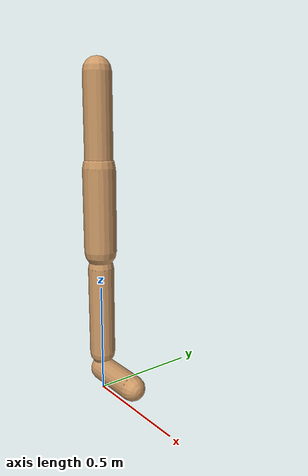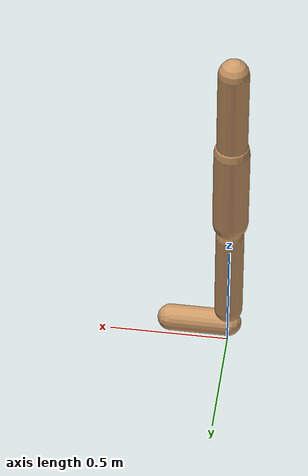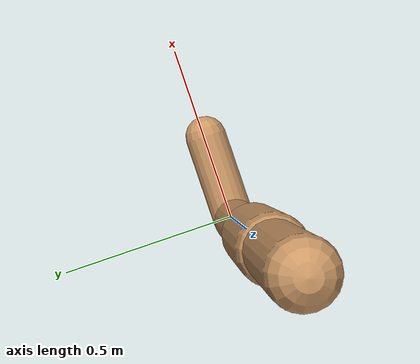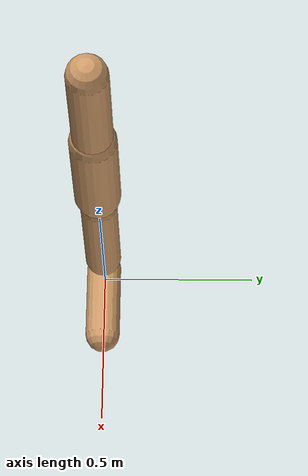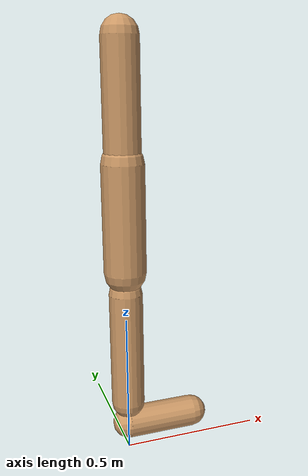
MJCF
<mujoco model="walker2d">
  <compiler angle="degree" coordinate="global" inertiafromgeom="true" />
  <default>
    <joint armature="0.01" damping=".1" limited="true" />
    <geom conaffinity="0" condim="3" contype="1" density="1000" friction="0.8 .1 .1" rgba="0.8 0.6 .4 1" />
  </default>
  <option integrator="RK4" timestep="0.002" />
  <worldbody>

    <body name="torso" pos="0 0 -0.163119713257374">
      <joint armature="0" axis="1 0 0" damping="0" limited="false" name="ignorex" pos="0 0 0" stiffness="0" type="slide" />
      <joint armature="0" axis="0 0 1" damping="0" limited="false" name="ignorez" pos="0 0 0" ref="1.25" stiffness="0" type="slide" />
      <joint armature="0" axis="0 1 0" damping="0" limited="false" name="ignorey" pos="0 0 0" stiffness="0" type="hinge" />
      <geom fromto="0 0 1.45 0 0 1.05" name="torso_geom" size="0.06255041753035569" type="capsule" />
      <body name="thigh">
        <joint axis="0 -1 0" name="thigh_joint" pos="0 0 1.05" range="-150 0" type="hinge" />
        <geom fromto="0.0 0.0 1.05 0.0 0.0 0.6772672325955982" name="thigh_geom" size="0.0732738293787402" type="capsule" />
        <body name="leg" pos="0.0 0.0 0.0772672325955982">
          <joint axis="0 -1 0" name="leg_joint" pos="0 0 0.6" range="-150 0" type="hinge" />
          <geom fromto="0.0 0.0 0.6 0.0 0.0 0.1858524806617758" name="leg_geom" size="0.05861906350299217" type="capsule" />
          <body name="foot" pos="0.0 0.0 0.08585248066177578">
            <joint axis="0 -1 0" name="foot_joint" pos="0 0 0.1" range="-45 45" type="hinge" />
            <geom fromto="-0.0 0.0 0.10000000000000002 0.24227275778069243 0.0 0.10000000000000002" name="foot_geom" size="0.05630415749497953" type="capsule" />
          </body>
        </body>
      </body>

      <body name="thigh_left">
        <joint axis="0 -1 0" name="thigh_left_joint" pos="0 0 1.05" range="-150 0" type="hinge" />
        <geom fromto="0.0 0.0 1.05 0.0 0.0 0.6772672325955982" name="thigh_left_geom" rgba=".7 .3 .6 1" size="0.0732738293787402" type="capsule" />
        <body name="leg_left" pos="0.0 0.0 0.0772672325955982">
          <joint axis="0 -1 0" name="leg_left_joint" pos="0 0 0.6" range="-150 0" type="hinge" />
          <geom fromto="0.0 0.0 0.6 0.0 0.0 0.1858524806617758" name="leg_left_geom" rgba=".7 .3 .6 1" size="0.05861906350299217" type="capsule" />
          <body name="foot_left" pos="0.0 0.0 0.08585248066177578">
            <joint axis="0 -1 0" name="foot_left_joint" pos="0 0 0.1" range="-45 45" type="hinge" />
            <geom fromto="-0.0 0.0 0.10000000000000002 0.24227275778069243 0.0 0.10000000000000002" name="foot_left_geom" rgba=".7 .3 .6 1" size="0.05630415749497953" type="capsule" />
          </body>
        </body>
      </body>
    </body>
  </worldbody>
  <actuator>

    <motor ctrllimited="true" ctrlrange="-1.0 1.0" gear="100" joint="thigh_joint" />
    <motor ctrllimited="true" ctrlrange="-1.0 1.0" gear="100" joint="leg_joint" />
    <motor ctrllimited="true" ctrlrange="-1.0 1.0" gear="100" joint="foot_joint" />
    <motor ctrllimited="true" ctrlrange="-1.0 1.0" gear="100" joint="thigh_left_joint" />
    <motor ctrllimited="true" ctrlrange="-1.0 1.0" gear="100" joint="leg_left_joint" />
    <motor ctrllimited="true" ctrlrange="-1.0 1.0" gear="100" joint="foot_left_joint" />

  </actuator>
</mujoco>
